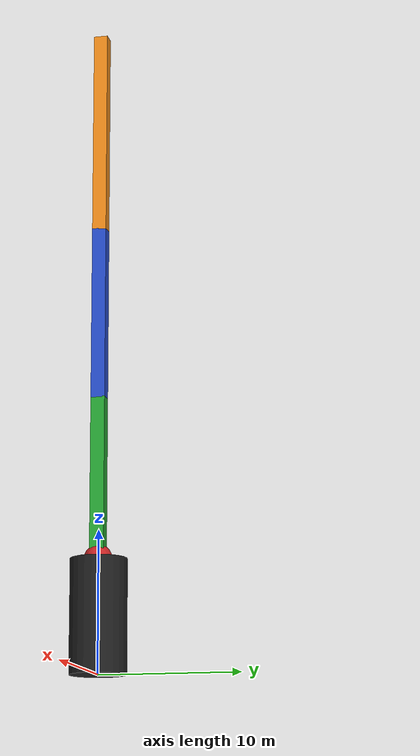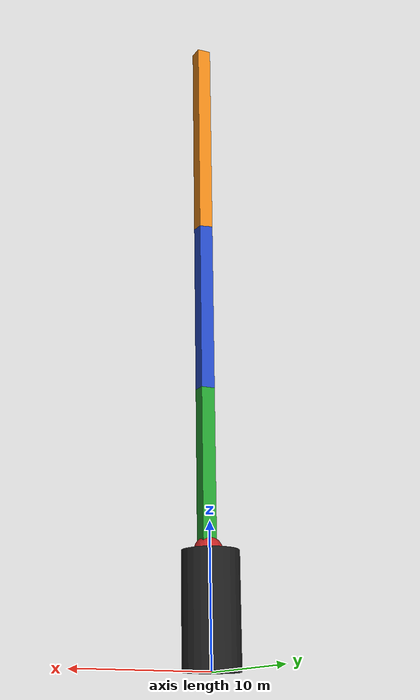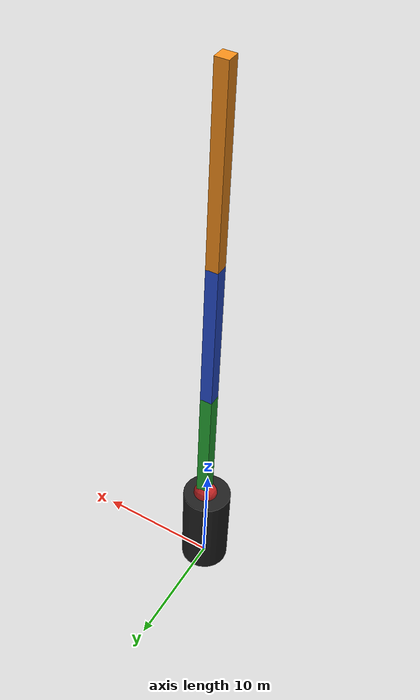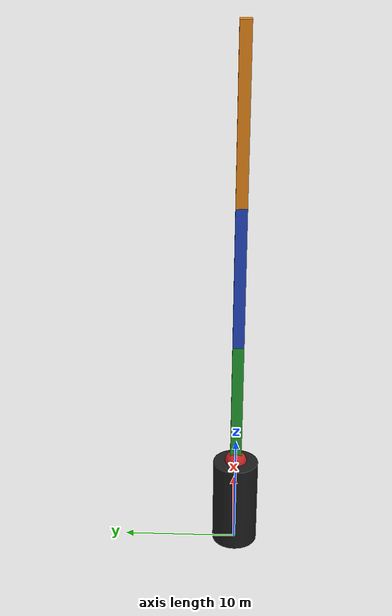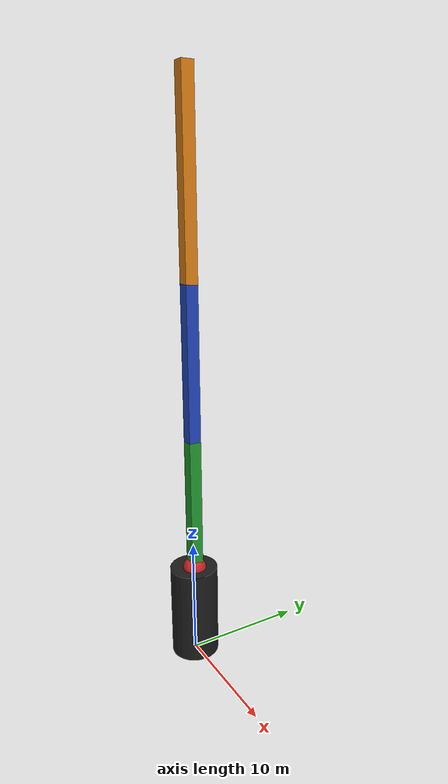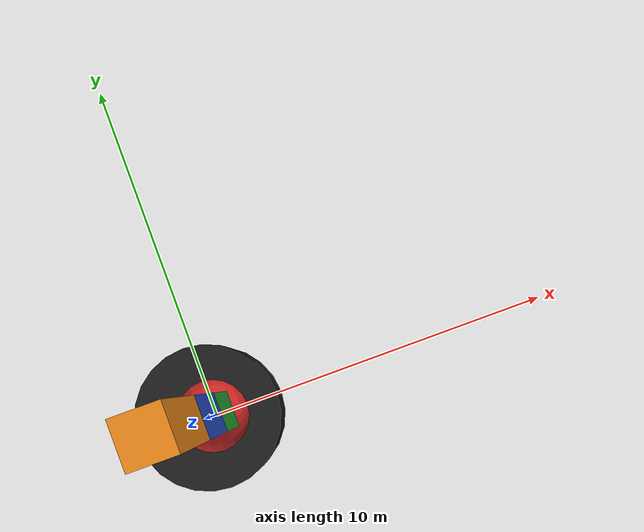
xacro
<?xml version="1.0"?>
<robot xmlns:xacro="http://www.ros.org/wiki/xacro" name="cxyarm">
    <!--constand the dimension-->
    <xacro:property name="PI" value="3.1415926535" />
    <xacro:property name="mass" value="1" /> <!-- arbitrary value for mass -->
    <xacro:property name="width" value="1" /> <!-- Square dimensions (widthxwidth) of beams -->
    <xacro:property name="height0" value="8"/> <!-- link0-->
    <xacro:property name="height1" value="0.3" /> <!-- Link 1 -->
    <xacro:property name="height2" value="11.5" /> <!-- Link 2 -->
    <xacro:property name="height3" value="12.5" /> <!-- Link 3 -->
    <xacro:property name="height4" value="15" /> <!-- Link 4 -->
    <xacro:property name="axel_offset" value="0.05" /> <!-- Space btw top of beam and the each joint -->

    <xacro:include filename="$(find cxy_arm_description)/urdf/materials.xacro" />
    <xacro:include filename="$(find cxy_arm_description)/urdf/cxyarm.gazebo" />

    <link name="world" />

    <joint name="fixed" type="fixed">
        <parent link="world" />
        <child link="link0" />
    </joint>

    <link name="link0">
        <collision>
            <origin xyz="0 0 ${height0/2}" rpy="0 0 0" />
            <geometry>
                <cylinder radius="2" length="${height0}"/>
            </geometry>
        </collision>

        <visual>
            <origin xyz="0 0 ${height0/2}" rpy="0 0 0" />
            <geometry>
                <cylinder radius="2" length="${height0}"/>
            </geometry>
            <material name="black" />
        </visual>

        <inertial>
            <origin xyz="0 0 ${height0/2}" rpy="0 0 0" />
            <mass value="${mass}" />
            <inertia ixx="${mass / 12.0 * (width*width + height0*height0)}" ixy="0" ixz="0" iyy="${mass / 12.0 * (height0*height0 + width*width)}" iyz="0" izz="${mass / 12.0 * (width*width + width*width)}" />
        </inertial>
    </link>

    <joint name="joint0" type="continuous">
        <origin xyz="0 0 ${height0-axel_offset}" rpy="${PI/2} 0 ${PI/2}" />
        <parent link="link0" />
        <child link="link1" />
        <axis xyz="0 1 0" />
        <dynamics damping="0.7" />
    </joint>

    <link name="link1">
        <collision>
            <origin xyz="0 0 ${height1/2}" rpy="0 0 0" />
            <geometry>
                <sphere radius="1"/>
            </geometry>
        </collision>

        <visual>
            <origin xyz="0 0 ${height1/2}" rpy="0 0 0" />
            <geometry>
                <sphere radius="1"/>
            </geometry>
            <material name="red" />
        </visual>

        <inertial>
            <origin xyz="0 0 ${height1/2}" rpy="0 0 0" />
            <mass value="${mass}" />
            <inertia ixx="${mass / 12.0 * (width*width + height1*height1)}" ixy="0" ixz="0" iyy="${mass / 12.0 * (height1*height1 + width*width)}" iyz="0" izz="${mass / 12.0 * (width*width + width*width)}" />
        </inertial>
    </link>

    <joint name="joint1" type="continuous">
        <origin xyz="0 0 ${height1-axel_offset}" rpy="${-PI/2} ${-PI/2} 0" />
        <parent link="link1" />
        <child link="link2" />
        <axis xyz="0 1 0" />
        <dynamics damping="0.7" />
    </joint>

    <link name="link2">
        <inertial>
            <origin xyz="0 0 ${height2/2-axel_offset}" rpy="0 0 0" />
            <mass value="${mass}" />
            <inertia ixx="${mass / 12.0 * (width*width + height2*height2)}" ixy="0" ixz="0" iyy="${mass / 12.0 * (height2*height2 + width*width)}" iyz="0" izz="${mass / 12.0 * (width*width + width*width)}" />
        </inertial>
        <visual name="">
            <origin xyz="0 0 ${height2/2-axel_offset}" rpy="0 0 0" />
            <geometry>
                <box size="${width} ${width} ${height2}" />
            </geometry>
            <material name="green" />
        </visual>
        <collision>
            <origin xyz="0 0 ${height2/2-axel_offset}" rpy="0 0 0" />
            <geometry>
                <box size="${width} ${width} ${height2}" />
            </geometry>
        </collision>
    </link>

    <joint name="joint2" type="continuous">
        <origin xyz="0 0 ${height2-axel_offset}" rpy="0 0 0" />
        <parent link="link2" />
        <child link="link3" />
        <axis xyz="0 1 0" />
        <dynamics damping="0.7" />
    </joint>

    <link name="link3">
        <inertial>
            <origin xyz="0 0 ${height3/2-axel_offset}" rpy="0 0 0" />
            <mass value="${mass}" />
            <inertia ixx="${mass / 12.0 * (width*width + height3*height3)}" ixy="0" ixz="0" iyy="${mass / 12.0 * (height3*height3 + width*width)}" iyz="0" izz="${mass / 12.0 * (width*width + width*width)}" />
        </inertial>
        <visual name="">
            <origin xyz="0 0 ${height3/2-axel_offset}" rpy="0 0 0" />
            <geometry>
                <box size="${width} ${width} ${height3}" />
            </geometry>
            <material name="blue" />
        </visual>
        <collision>
            <origin xyz="0 0 ${height3/2-axel_offset}" rpy="0 0 0" />
            <geometry>
                <box size="${width} ${width} ${height3}" />
            </geometry>
        </collision>
    </link>

    <joint name="joint3" type="continuous">
        <origin xyz="0 0 ${height3-axel_offset}" rpy="0 0 0" />
        <parent link="link3" />
        <child link="link4" />
        <axis xyz="0 1 0" />
        <dynamics damping="0.7" />
    </joint>

    <link name="link4">
        <inertial>
            <origin xyz="0 0 ${height4/2-axel_offset}" rpy="0 0 0" />
            <mass value="${mass}" />
            <inertia ixx="${mass / 12.0 * (width*width + height4*height4)}" ixy="0" ixz="0" iyy="${mass / 12.0 * (height4*height4 + width*width)}" iyz="0" izz="${mass / 12.0 * (width*width + width*width)}" />
        </inertial>
        <visual name="">
            <origin xyz="0 0 ${height4/2-axel_offset}" rpy="0 0 0" />
            <geometry>
                <box size="${width} ${width} ${height4}" />
            </geometry>
            <material name="orange" />
        </visual>
        <collision>
            <origin xyz="0 0 ${height4/2-axel_offset}" rpy="0 0 0" />
            <geometry>
                <box size="${width} ${width} ${height4}" />
            </geometry>
        </collision>
    </link>

    <transmission name="tran0">
        <type>transmission_interface/SimpleTransmission</type>
        <joint name="joint0">
            <hardwareInterface>hardware_interface/EffortJointInterface</hardwareInterface>
        </joint>
        <actuator name="motor0">
            <hardwareInterface>hardware_interface/EffortJointInterface</hardwareInterface>
            <mechanicalReduction>1</mechanicalReduction>
        </actuator>
    </transmission>

    <transmission name="tran1">
        <type>transmission_interface/SimpleTransmission</type>
        <joint name="joint1">
            <hardwareInterface>hardware_interface/EffortJointInterface</hardwareInterface>
        </joint>
        <actuator name="motor1">
            <hardwareInterface>hardware_interface/EffortJointInterface</hardwareInterface>
            <mechanicalReduction>1</mechanicalReduction>
        </actuator>
    </transmission>

    <transmission name="tran2">
        <type>transmission_interface/SimpleTransmission</type>
        <joint name="joint2">
            <hardwareInterface>hardware_interface/EffortJointInterface</hardwareInterface>
        </joint>
        <actuator name="motor2">
            <hardwareInterface>hardware_interface/EffortJointInterface</hardwareInterface>
            <mechanicalReduction>1</mechanicalReduction>
        </actuator>
    </transmission>

    <transmission name="tran3">
        <type>transmission_interface/SimpleTransmission</type>
        <joint name="joint3">
            <hardwareInterface>hardware_interface/EffortJointInterface</hardwareInterface>
        </joint>
        <actuator name="motor3">
            <hardwareInterface>hardware_interface/EffortJointInterface</hardwareInterface>
            <mechanicalReduction>1</mechanicalReduction>
        </actuator>
    </transmission>

</robot>
